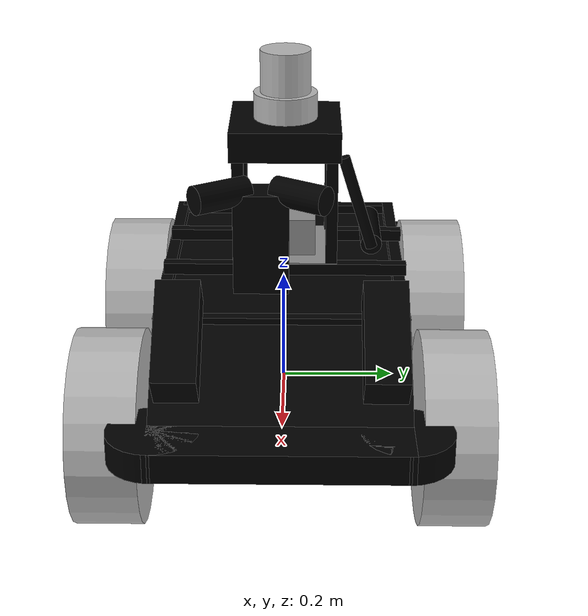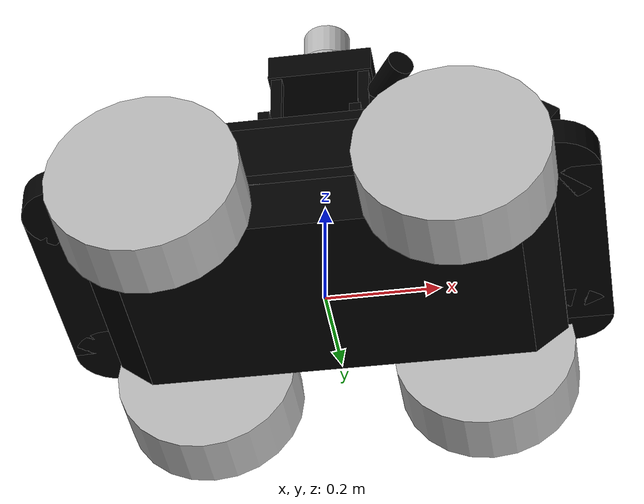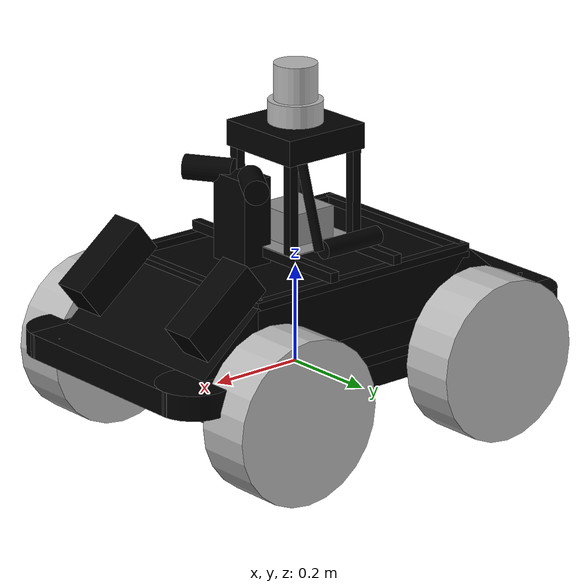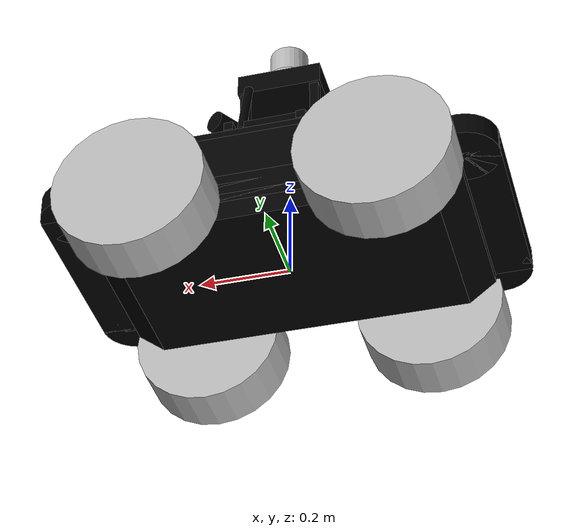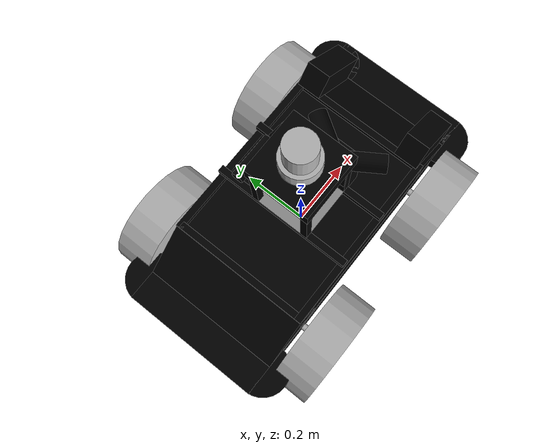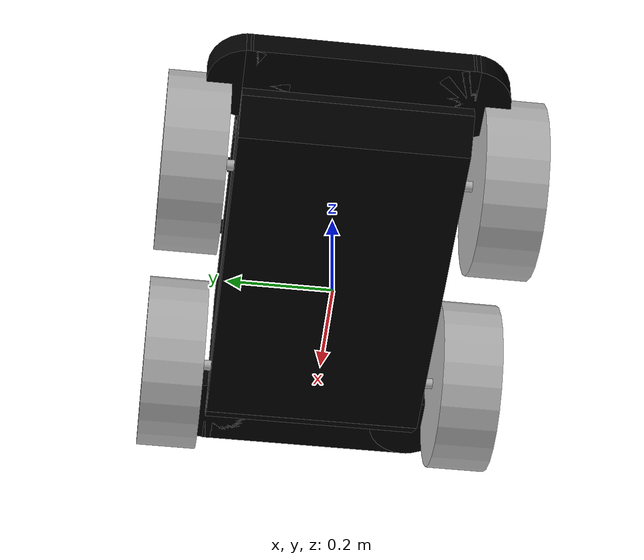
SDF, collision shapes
<?xml version='1.0' encoding='utf-8'?>
<sdf version="1.6">
  <model name="ctu_cras_norlab_husky_sensor_config_3">
    <link name="base_link">
      <inertial>
        <pose>0.007802 0.00085 0.079129 0 -0 0</pose>
        <mass>44.5141</mass>
        <inertia>
          <ixx>0.813788</ixx>
          <ixy>0.000834011</ixy>
          <ixz>-0.0529492</ixz>
          <iyy>2.03197</iyy>
          <iyz>-0.00771766</iyz>
          <izz>2.19559</izz>
        </inertia>
      </inertial>
      <collision name="base_link_collision_bumper_collision">
        <pose>0 0 0.091 0 -0 0</pose>
        <geometry>
          <box>
            <size>0.9874 0.42 0.05</size>
          </box>
        </geometry>
      </collision>
      <collision name="base_link_collision_middle_collision_1">
        <pose>0 0 0.07 0 -0 0</pose>
        <geometry>
          <box>
            <size>0.82 0.42 0.05</size>
          </box>
        </geometry>
      </collision>
      <collision name="base_link_collision_bottom_collision_2">
        <pose>0 0 0.046 0 -0 0</pose>
        <geometry>
          <box>
            <size>0.7 0.42 0.095</size>
          </box>
        </geometry>
      </collision>
      <collision name="base_link_collision_top_collision_3">
        <pose>0 0 0.169 0 -0 0</pose>
        <geometry>
          <box>
            <size>0.54 0.42 0.11</size>
          </box>
        </geometry>
      </collision>
      <collision name="base_link_collision_front_bottom_collision_4">
        <pose>0.3683 0 0.0367 0 -0.66 0</pose>
        <geometry>
          <box>
            <size>0.0759 0.42 0.038</size>
          </box>
        </geometry>
      </collision>
      <collision name="base_link_collision_rear_bottom_collision_5">
        <pose>-0.3683 0 0.0367 0 0.66 0</pose>
        <geometry>
          <box>
            <size>0.0759 0.42 0.038</size>
          </box>
        </geometry>
      </collision>
      <collision name="base_link_collision_front_top_collision_6">
        <pose>0.305 0 0.134 0 0.7 0</pose>
        <geometry>
          <box>
            <size>0.18 0.42 0.1</size>
          </box>
        </geometry>
      </collision>
      <collision name="base_link_collision_rear_top_collision_7">
        <pose>-0.305 0 0.134 0 -0.7 0</pose>
        <geometry>
          <box>
            <size>0.18 0.42 0.1</size>
          </box>
        </geometry>
      </collision>
      <collision name="base_link_collision_front_bumper_left_side_collision_8">
        <pose>0.419 0.2 0.091 0 -0 0</pose>
        <geometry>
          <cylinder>
            <length>0.05</length>
            <radius>0.075</radius>
          </cylinder>
        </geometry>
      </collision>
      <collision name="base_link_collision_front_bumper_right_side_collision_9">
        <pose>0.419 -0.2 0.091 0 -0 0</pose>
        <geometry>
          <cylinder>
            <length>0.05</length>
            <radius>0.075</radius>
          </cylinder>
        </geometry>
      </collision>
      <collision name="base_link_collision_rear_bumper_left_side_collision_10">
        <pose>-0.419 0.2 0.091 0 -0 0</pose>
        <geometry>
          <cylinder>
            <length>0.05</length>
            <radius>0.075</radius>
          </cylinder>
        </geometry>
      </collision>
      <collision name="base_link_collision_rear_bumper_right_side_collision_11">
        <pose>-0.419 -0.2 0.091 0 -0 0</pose>
        <geometry>
          <cylinder>
            <length>0.05</length>
            <radius>0.075</radius>
          </cylinder>
        </geometry>
      </collision>
      <collision name="base_link_fixed_joint_lump__payload_frame_collision_12">
        <pose>0 -0.2 0.23 0 1.5707963267948966 0</pose>
        <geometry>
          <box>
            <size>0.02 0.02 0.54</size>
          </box>
        </geometry>
      </collision>
      <collision name="base_link_fixed_joint_lump__payload_frame_collision_13">
        <pose>0 0.2 0.23 0 1.5707963267948966 0</pose>
        <geometry>
          <box>
            <size>0.02 0.02 0.54</size>
          </box>
        </geometry>
      </collision>
      <collision name="base_link_fixed_joint_lump__payload_frame_collision_14">
        <pose>-0.26 0 0.23 1.5707963267948966 -0 0</pose>
        <geometry>
          <box>
            <size>0.02 0.02 0.4</size>
          </box>
        </geometry>
      </collision>
      <collision name="base_link_fixed_joint_lump__payload_frame_collision_15">
        <pose>0.26 0 0.23 1.5707963267948966 -0 0</pose>
        <geometry>
          <box>
            <size>0.02 0.02 0.4</size>
          </box>
        </geometry>
      </collision>
      <collision name="base_link_fixed_joint_lump__mote_deployer_l_collision_16">
        <pose>0.337827 0.166 0.232059 0 0.66 0</pose>
        <geometry>
          <box>
            <size>0.18 0.072 0.075</size>
          </box>
        </geometry>
      </collision>
      <collision name="base_link_fixed_joint_lump__mote_deployer_r_collision_17">
        <pose>0.337827 -0.164 0.232059 0 0.66 0</pose>
        <geometry>
          <box>
            <size>0.18 0.072 0.075</size>
          </box>
        </geometry>
      </collision>
      <collision name="base_link_fixed_joint_lump__tower_collision_18">
        <pose>-0.078 -0.077 0.36 0 -0 0</pose>
        <geometry>
          <box>
            <size>0.02 0.02 0.2</size>
          </box>
        </geometry>
      </collision>
      <collision name="base_link_fixed_joint_lump__tower_collision_19">
        <pose>0.082 -0.077 0.36 0 -0 0</pose>
        <geometry>
          <box>
            <size>0.02 0.02 0.2</size>
          </box>
        </geometry>
      </collision>
      <collision name="base_link_fixed_joint_lump__tower_collision_20">
        <pose>0.082 0.083 0.36 0 -0 0</pose>
        <geometry>
          <box>
            <size>0.02 0.02 0.2</size>
          </box>
        </geometry>
      </collision>
      <collision name="base_link_fixed_joint_lump__tower_collision_21">
        <pose>-0.078 0.083 0.36 0 -0 0</pose>
        <geometry>
          <box>
            <size>0.02 0.02 0.2</size>
          </box>
        </geometry>
      </collision>
      <collision name="base_link_fixed_joint_lump__tower_collision_22">
        <pose>-0.078 0.003 0.25 1.5707963267948966 -0 0</pose>
        <geometry>
          <box>
            <size>0.02 0.02 0.42</size>
          </box>
        </geometry>
      </collision>
      <collision name="base_link_fixed_joint_lump__tower_collision_23">
        <pose>0.082 0.003 0.25 1.5707963267948966 -0 0</pose>
        <geometry>
          <box>
            <size>0.02 0.02 0.42</size>
          </box>
        </geometry>
      </collision>
      <collision name="base_link_fixed_joint_lump__bullet_collision_24">
        <pose>-0.009 0.153 0.285 0 1.5707963267948966 0</pose>
        <geometry>
          <cylinder>
            <length>0.138</length>
            <radius>0.0185</radius>
          </cylinder>
        </geometry>
      </collision>
      <collision name="base_link_fixed_joint_lump__bullet_antenna_collision_25">
        <pose>0.07 0.127881 0.366204 0.3 -0 0</pose>
        <geometry>
          <cylinder>
            <length>0.17</length>
            <radius>0.01</radius>
          </cylinder>
        </geometry>
      </collision>
      <collision name="base_link_fixed_joint_lump__mobilicom_collision_26">
        <pose>0.1045 -0.037 0.300163 -1e-06 -1.56579 3.1415926535897931</pose>
        <geometry>
          <box>
            <size>0.2 0.095 0.065</size>
          </box>
        </geometry>
      </collision>
      <collision name="base_link_fixed_joint_lump__mobilicom_antenna_l_collision_27">
        <pose>0.131014 -0.104074 0.400297 -1 -1.56579 3.1415926535897931</pose>
        <geometry>
          <cylinder>
            <length>0.1</length>
            <radius>0.025</radius>
          </cylinder>
        </geometry>
      </collision>
      <collision name="base_link_fixed_joint_lump__mobilicom_antenna_r_collision_28">
        <pose>0.131014 0.030074 0.400297 0.999999 -1.56579 3.1415926535897931</pose>
        <geometry>
          <cylinder>
            <length>0.1</length>
            <radius>0.025</radius>
          </cylinder>
        </geometry>
      </collision>
      <collision name="base_link_fixed_joint_lump__tower_cap_collision_29">
        <pose>0.002 0.003 0.471 0 -0 0</pose>
        <geometry>
          <box>
            <size>0.19 0.19 0.052</size>
          </box>
        </geometry>
      </collision>
      <visual name="base_link_visual_visual">
        <geometry>
          <mesh>
            <uri>https://fuel.ignitionrobotics.org/1.0/OpenRobotics/models/CTU_CRAS_NORLAB_HUSKY_SENSOR_CONFIG_1/tip/files/meshes/base_link.dae</uri>
          </mesh>
        </geometry>
      </visual>
      <visual name="base_link_front_bumper_visual_visual_1">
        <pose>0.48 0 0.091 0 -0 0</pose>
        <geometry>
          <mesh>
            <uri>https://fuel.ignitionrobotics.org/1.0/OpenRobotics/models/CTU_CRAS_NORLAB_HUSKY_SENSOR_CONFIG_1/tip/files/meshes/bumper.dae</uri>
          </mesh>
        </geometry>
      </visual>
      <visual name="base_link__rear_bumper_visual_visual_2">
        <pose>-0.48 0 0.091 0 -0 3.1415926535897931</pose>
        <geometry>
          <mesh>
            <uri>https://fuel.ignitionrobotics.org/1.0/OpenRobotics/models/CTU_CRAS_NORLAB_HUSKY_SENSOR_CONFIG_1/tip/files/meshes/bumper.dae</uri>
          </mesh>
        </geometry>
      </visual>
      <visual name="base_link_fixed_joint_lump__top_chassis_link_visual_5_visual_3">
        <geometry>
          <mesh>
            <uri>https://fuel.ignitionrobotics.org/1.0/OpenRobotics/models/CTU_CRAS_NORLAB_HUSKY_SENSOR_CONFIG_1/tip/files/meshes/top_chassis.dae</uri>
          </mesh>
        </geometry>
      </visual>
      <visual name="base_link_fixed_joint_lump__payload_frame_visual_4">
        <pose>0 -0.2 0.23 0 1.5707963267948966 0</pose>
        <geometry>
          <box>
            <size>0.02 0.02 0.54</size>
          </box>
        </geometry>
        <material>
          <ambient>0 0 0 0</ambient>
          <diffuse>0 0 0 1</diffuse>
          <specular>0 0 0 0</specular>
          <emissive>0 0 0 0</emissive>
        </material>
      </visual>
      <visual name="base_link_fixed_joint_lump__payload_frame_visual_5">
        <pose>0 0.2 0.23 0 1.5707963267948966 0</pose>
        <geometry>
          <box>
            <size>0.02 0.02 0.54</size>
          </box>
        </geometry>
        <material>
          <ambient>0 0 0 0</ambient>
          <diffuse>0 0 0 1</diffuse>
          <specular>0 0 0 0</specular>
          <emissive>0 0 0 0</emissive>
        </material>
      </visual>
      <visual name="base_link_fixed_joint_lump__payload_frame_visual_6">
        <pose>-0.26 0 0.23 1.5707963267948966 -0 0</pose>
        <geometry>
          <box>
            <size>0.02 0.02 0.4</size>
          </box>
        </geometry>
        <material>
          <ambient>0 0 0 0</ambient>
          <diffuse>0 0 0 1</diffuse>
          <specular>0 0 0 0</specular>
          <emissive>0 0 0 0</emissive>
        </material>
      </visual>
      <visual name="base_link_fixed_joint_lump__payload_frame_visual_7">
        <pose>0.26 0 0.23 1.5707963267948966 -0 0</pose>
        <geometry>
          <box>
            <size>0.02 0.02 0.4</size>
          </box>
        </geometry>
        <material>
          <ambient>0 0 0 0</ambient>
          <diffuse>0 0 0 1</diffuse>
          <specular>0 0 0 0</specular>
          <emissive>0 0 0 0</emissive>
        </material>
      </visual>
      <visual name="base_link_fixed_joint_lump__mote_deployer_l_visual_8">
        <pose>0.23 0.19 0.195 0 0.33 0</pose>
        <geometry>
          <mesh>
            <uri>https://fuel.ignitionrobotics.org/1.0/OpenRobotics/models/CTU_CRAS_NORLAB_HUSKKY_SENSOR_CONFIG_3/tip/files/meshes/mote_deployer.dae</uri>
          </mesh>
        </geometry>
      </visual>
      <visual name="base_link_fixed_joint_lump__mote_deployer_r_visual_9">
        <pose>0.23 -0.14 0.195 0 0.33 0</pose>
        <geometry>
          <mesh>
            <uri>https://fuel.ignitionrobotics.org/1.0/OpenRobotics/models/CTU_CRAS_NORLAB_HUSKKY_SENSOR_CONFIG_3/tip/files/meshes/mote_deployer.dae</uri>
          </mesh>
        </geometry>
      </visual>
      <visual name="base_link_fixed_joint_lump__tower_visual_10">
        <pose>-0.078 -0.077 0.36 0 -0 0</pose>
        <geometry>
          <box>
            <size>0.02 0.02 0.2</size>
          </box>
        </geometry>
        <material>
          <ambient>0 0 0 0</ambient>
          <diffuse>0.564706 0.564706 0.564706 1</diffuse>
          <specular>0 0 0 0</specular>
          <emissive>0 0 0 0</emissive>
        </material>
      </visual>
      <visual name="base_link_fixed_joint_lump__tower_visual_11">
        <pose>0.082 -0.077 0.36 0 -0 0</pose>
        <geometry>
          <box>
            <size>0.02 0.02 0.2</size>
          </box>
        </geometry>
        <material>
          <ambient>0 0 0 0</ambient>
          <diffuse>0.564706 0.564706 0.564706 1</diffuse>
          <specular>0 0 0 0</specular>
          <emissive>0 0 0 0</emissive>
        </material>
      </visual>
      <visual name="base_link_fixed_joint_lump__tower_visual_12">
        <pose>0.082 0.083 0.36 0 -0 0</pose>
        <geometry>
          <box>
            <size>0.02 0.02 0.2</size>
          </box>
        </geometry>
        <material>
          <ambient>0 0 0 0</ambient>
          <diffuse>0.564706 0.564706 0.564706 1</diffuse>
          <specular>0 0 0 0</specular>
          <emissive>0 0 0 0</emissive>
        </material>
      </visual>
      <visual name="base_link_fixed_joint_lump__tower_visual_13">
        <pose>-0.078 0.083 0.36 0 -0 0</pose>
        <geometry>
          <box>
            <size>0.02 0.02 0.2</size>
          </box>
        </geometry>
        <material>
          <ambient>0 0 0 0</ambient>
          <diffuse>0.564706 0.564706 0.564706 1</diffuse>
          <specular>0 0 0 0</specular>
          <emissive>0 0 0 0</emissive>
        </material>
      </visual>
      <visual name="base_link_fixed_joint_lump__tower_visual_14">
        <pose>-0.078 0.003 0.25 1.5707963267948966 -0 0</pose>
        <geometry>
          <box>
            <size>0.02 0.02 0.42</size>
          </box>
        </geometry>
        <material>
          <ambient>0 0 0 0</ambient>
          <diffuse>0.564706 0.564706 0.564706 1</diffuse>
          <specular>0 0 0 0</specular>
          <emissive>0 0 0 0</emissive>
        </material>
      </visual>
      <visual name="base_link_fixed_joint_lump__tower_visual_15">
        <pose>0.082 0.003 0.25 1.5707963267948966 -0 0</pose>
        <geometry>
          <box>
            <size>0.02 0.02 0.42</size>
          </box>
        </geometry>
        <material>
          <ambient>0 0 0 0</ambient>
          <diffuse>0.564706 0.564706 0.564706 1</diffuse>
          <specular>0 0 0 0</specular>
          <emissive>0 0 0 0</emissive>
        </material>
      </visual>
      <visual name="base_link_fixed_joint_lump__bullet_visual_16">
        <pose>-0.078 0.153 0.285 0 -0 0</pose>
        <geometry>
          <mesh>
            <uri>https://fuel.ignitionrobotics.org/1.0/OpenRobotics/models/CTU_CRAS_NORLAB_HUSKKY_SENSOR_CONFIG_3/tip/files/meshes/bullet.dae</uri>
          </mesh>
        </geometry>
        <material>
          <ambient>0 0 0 0</ambient>
          <diffuse>0.664706 0.664706 0.664706 1</diffuse>
          <specular>0 0 0 0</specular>
          <emissive>0 0 0 0</emissive>
        </material>
      </visual>
      <visual name="base_link_fixed_joint_lump__bullet_antenna_visual_17">
        <pose>0.07 0.127881 0.366204 0.3 -0 0</pose>
        <geometry>
          <cylinder>
            <length>0.17</length>
            <radius>0.01</radius>
          </cylinder>
        </geometry>
        <material>
          <ambient>0 0 0 0</ambient>
          <diffuse>0.664706 0.664706 0.664706 1</diffuse>
          <specular>0 0 0 0</specular>
          <emissive>0 0 0 0</emissive>
        </material>
      </visual>
      <visual name="base_link_fixed_joint_lump__mobilicom_visual_18">
        <pose>0.09175 -0.037 0.350099 -1e-06 -1.56579 3.1415926535897931</pose>
        <geometry>
          <mesh>
            <uri>https://fuel.ignitionrobotics.org/1.0/OpenRobotics/models/CTU_CRAS_NORLAB_HUSKKY_SENSOR_CONFIG_3/tip/files/meshes/mobilicom.dae</uri>
          </mesh>
        </geometry>
      </visual>
      <visual name="base_link_fixed_joint_lump__mobilicom_antenna_l_visual_19">
        <pose>0.131014 -0.104074 0.400297 -1 -1.56579 3.1415926535897931</pose>
        <geometry>
          <cylinder>
            <length>0.1</length>
            <radius>0.005</radius>
          </cylinder>
        </geometry>
      </visual>
      <visual name="base_link_fixed_joint_lump__mobilicom_antenna_r_visual_20">
        <pose>0.131014 0.030074 0.400297 0.999999 -1.56579 3.1415926535897931</pose>
        <geometry>
          <cylinder>
            <length>0.1</length>
            <radius>0.005</radius>
          </cylinder>
        </geometry>
      </visual>
      <visual name="base_link_fixed_joint_lump__tower_cap_visual_21">
        <pose>0.002 0.003 0.462 0 -0 0</pose>
        <geometry>
          <mesh>
            <uri>https://fuel.ignitionrobotics.org/1.0/OpenRobotics/models/CTU_CRAS_NORLAB_HUSKKY_SENSOR_CONFIG_3/tip/files/meshes/tower_cap_v1.dae</uri>
          </mesh>
        </geometry>
      </visual>
      <light name="light_left" type="spot">
        <pose>0 0.215 0.23 1.5707963267948966 1.5707963267948966 0</pose>
        <attenuation>
          <range>50</range>
          <linear>0</linear>
          <constant>0.1</constant>
          <quadratic>0.0025</quadratic>
        </attenuation>
        <diffuse>0.8 0.8 0.5 1</diffuse>
        <specular>0.8 0.8 0.5 1</specular>
        <spot>
          <inner_angle>2.8</inner_angle>
          <outer_angle>2.9</outer_angle>
          <falloff>1</falloff>
        </spot>
        <direction>1 0 0</direction>
      </light>
      <light name="light_right" type="spot">
        <pose>0 -0.215 0.23 -1.5707963267948966 1.5707963267948966 0</pose>
        <attenuation>
          <range>50</range>
          <linear>0</linear>
          <constant>0.1</constant>
          <quadratic>0.0025</quadratic>
        </attenuation>
        <diffuse>0.8 0.8 0.5 1</diffuse>
        <specular>0.8 0.8 0.5 1</specular>
        <spot>
          <inner_angle>2.8</inner_angle>
          <outer_angle>2.9</outer_angle>
          <falloff>1</falloff>
        </spot>
        <direction>1 0 0</direction>
      </light>
      <light name="light_rear" type="spot">
        <pose>-0.275 0 0.23 0 1.5707963267948966 0</pose>
        <attenuation>
          <range>50</range>
          <linear>0</linear>
          <constant>0.1</constant>
          <quadratic>0.0025</quadratic>
        </attenuation>
        <diffuse>0.8 0.8 0.5 1</diffuse>
        <specular>0.8 0.8 0.5 1</specular>
        <spot>
          <inner_angle>1.8</inner_angle>
          <outer_angle>1.9</outer_angle>
          <falloff>1</falloff>
        </spot>
        <direction>1 0 0</direction>
      </light>
      <light name="light_front" type="spot">
        <pose>0.275 0 0.23 3.1415926535897931 1.5707963267948966 0</pose>
        <attenuation>
          <range>50</range>
          <linear>0</linear>
          <constant>0.1</constant>
          <quadratic>0.0025</quadratic>
        </attenuation>
        <diffuse>0.8 0.8 0.5 1</diffuse>
        <specular>0.8 0.8 0.5 1</specular>
        <spot>
          <inner_angle>1.8</inner_angle>
          <outer_angle>1.9</outer_angle>
          <falloff>1</falloff>
        </spot>
        <direction>1 0 0</direction>
      </light>
    </link>
    <link name="front_left_wheel_link">
      <pose>0.256 0.2854 0.03282 0 -0 0</pose>
      <inertial>
        <mass>2.637</mass>
        <inertia>
          <ixx>0.02467</ixx>
          <ixy>0</ixy>
          <ixz>0</ixz>
          <iyy>0.04411</iyy>
          <iyz>0</iyz>
          <izz>0.02467</izz>
        </inertia>
      </inertial>
      <collision name="front_left_wheel_link_collision_collision">
        <pose>0 0 0 1.5707963267948966 -0 0</pose>
        <geometry>
          <cylinder>
            <length>0.1143</length>
            <radius>0.1651</radius>
          </cylinder>
        </geometry>
        <surface>
          <contact>
            <ode>
              <kp>1e+07</kp>
              <kd>1</kd>
            </ode>
          </contact>
          <friction>
            <ode>
              <mu>0.5</mu>
              <mu2>1</mu2>
              <slip1>0.00062</slip1>
              <slip2>0</slip2>
              <fdir1>0 0 1</fdir1>
            </ode>
          </friction>
        </surface>
      </collision>
      <visual name="front_left_wheel_link_visual_visual">
        <geometry>
          <mesh>
            <uri>https://fuel.ignitionrobotics.org/1.0/OpenRobotics/models/CTU_CRAS_NORLAB_HUSKY_SENSOR_CONFIG_1/tip/files/meshes/wheel.dae</uri>
          </mesh>
        </geometry>
      </visual>
    </link>
    <joint name="front_left_wheel_joint" type="revolute">
      <child>front_left_wheel_link</child>
      <parent>base_link</parent>
      <axis>
        <xyz>0 1 0</xyz>
        <limit>
          <lower>-1e+16</lower>
          <upper>1e+16</upper>
          <effort>-1</effort>
          <velocity>-1</velocity>
        </limit>
        <dynamics>
          <damping>0</damping>
          <friction>0</friction>
          <spring_reference>0</spring_reference>
          <spring_stiffness>0</spring_stiffness>
        </dynamics>
        <use_parent_model_frame>0</use_parent_model_frame>
      </axis>
    </joint>
    <link name="front_left_wheel_axle">
      <pose>0.256 0.2854 0.03282 0 -0 0</pose>
      <inertial>
        <mass>1e-05</mass>
        <inertia>
          <ixx>0.001</ixx>
          <ixy>1e-06</ixy>
          <ixz>1e-06</ixz>
          <iyy>0.001</iyy>
          <iyz>1e-06</iyz>
          <izz>0.001</izz>
        </inertia>
      </inertial>
      <collision name="front_left_wheel_axle_collision">
        <pose>0 -0.065 0 1.5707963267948966 -0 0</pose>
        <geometry>
          <cylinder>
            <length>0.03</length>
            <radius>0.01</radius>
          </cylinder>
        </geometry>
      </collision>
      <visual name="front_left_wheel_axle_visual">
        <pose>0 -0.065 0 1.5707963267948966 -0 0</pose>
        <geometry>
          <cylinder>
            <length>0.03</length>
            <radius>0.01</radius>
          </cylinder>
        </geometry>
      </visual>
    </link>
    <joint name="front_left_wheel_axle_j" type="fixed">
      <child>front_left_wheel_axle</child>
      <parent>front_left_wheel_link</parent>
      <axis>
        <dynamics>
          <spring_reference>0</spring_reference>
          <spring_stiffness>0</spring_stiffness>
        </dynamics>
        <xyz>0 0 1</xyz>
        <use_parent_model_frame>0</use_parent_model_frame>
        <limit>
          <lower>-1e+16</lower>
          <upper>1e+16</upper>
        </limit>
      </axis>
      <physics>
        <ode>
          <limit>
            <cfm>0</cfm>
            <erp>0.2</erp>
          </limit>
        </ode>
      </physics>
    </joint>
    <link name="front_right_wheel_link">
      <pose>0.256 -0.2854 0.03282 0 -0 0</pose>
      <inertial>
        <mass>2.637</mass>
        <inertia>
          <ixx>0.02467</ixx>
          <ixy>0</ixy>
          <ixz>0</ixz>
          <iyy>0.04411</iyy>
          <iyz>0</iyz>
          <izz>0.02467</izz>
        </inertia>
      </inertial>
      <collision name="front_right_wheel_link_collision_collision">
        <pose>0 0 0 1.5707963267948966 -0 0</pose>
        <geometry>
          <cylinder>
            <length>0.1143</length>
            <radius>0.1651</radius>
          </cylinder>
        </geometry>
        <surface>
          <contact>
            <ode>
              <kp>1e+07</kp>
              <kd>1</kd>
            </ode>
          </contact>
          <friction>
            <ode>
              <mu>0.5</mu>
              <mu2>1</mu2>
              <slip1>0.00062</slip1>
              <slip2>0</slip2>
              <fdir1>0 0 1</fdir1>
            </ode>
          </friction>
        </surface>
      </collision>
      <visual name="front_right_wheel_link_visual_visual">
        <geometry>
          <mesh>
            <uri>https://fuel.ignitionrobotics.org/1.0/OpenRobotics/models/CTU_CRAS_NORLAB_HUSKY_SENSOR_CONFIG_1/tip/files/meshes/wheel.dae</uri>
          </mesh>
        </geometry>
      </visual>
    </link>
    <joint name="front_right_wheel_joint" type="revolute">
      <child>front_right_wheel_link</child>
      <parent>base_link</parent>
      <axis>
        <xyz>0 1 0</xyz>
        <limit>
          <lower>-1e+16</lower>
          <upper>1e+16</upper>
          <effort>-1</effort>
          <velocity>-1</velocity>
        </limit>
        <dynamics>
          <damping>0</damping>
          <friction>0</friction>
          <spring_reference>0</spring_reference>
          <spring_stiffness>0</spring_stiffness>
        </dynamics>
        <use_parent_model_frame>0</use_parent_model_frame>
      </axis>
    </joint>
    <link name="front_right_wheel_axle">
      <pose>0.256 -0.2854 0.03282 0 -0 0</pose>
      <inertial>
        <mass>1e-05</mass>
        <inertia>
          <ixx>0.001</ixx>
          <ixy>1e-06</ixy>
          <ixz>1e-06</ixz>
          <iyy>0.001</iyy>
          <iyz>1e-06</iyz>
          <izz>0.001</izz>
        </inertia>
      </inertial>
      <collision name="front_right_wheel_axle_collision">
        <pose>0 0.065 0 1.5707963267948966 -0 0</pose>
        <geometry>
          <cylinder>
            <length>0.03</length>
            <radius>0.01</radius>
          </cylinder>
        </geometry>
      </collision>
      <visual name="front_right_wheel_axle_visual">
        <pose>0 0.065 0 1.5707963267948966 -0 0</pose>
        <geometry>
          <cylinder>
            <length>0.03</length>
            <radius>0.01</radius>
          </cylinder>
        </geometry>
      </visual>
    </link>
    <joint name="front_right_wheel_axle_j" type="fixed">
      <child>front_right_wheel_axle</child>
      <parent>front_right_wheel_link</parent>
      <axis>
        <dynamics>
          <spring_reference>0</spring_reference>
          <spring_stiffness>0</spring_stiffness>
        </dynamics>
        <xyz>0 0 1</xyz>
        <use_parent_model_frame>0</use_parent_model_frame>
        <limit>
          <lower>-1e+16</lower>
          <upper>1e+16</upper>
        </limit>
      </axis>
      <physics>
        <ode>
          <limit>
            <cfm>0</cfm>
            <erp>0.2</erp>
          </limit>
        </ode>
      </physics>
    </joint>
    <link name="rear_left_wheel_link">
      <pose>-0.256 0.2854 0.03282 0 -0 0</pose>
      <inertial>
        <mass>2.637</mass>
        <inertia>
          <ixx>0.02467</ixx>
          <ixy>0</ixy>
          <ixz>0</ixz>
          <iyy>0.04411</iyy>
          <iyz>0</iyz>
          <izz>0.02467</izz>
        </inertia>
      </inertial>
      <collision name="rear_left_wheel_link_collision_collision">
        <pose>0 0 0 1.5707963267948966 -0 0</pose>
        <geometry>
          <cylinder>
            <length>0.1143</length>
            <radius>0.1651</radius>
          </cylinder>
        </geometry>
        <surface>
          <contact>
            <ode>
              <kp>1e+07</kp>
              <kd>1</kd>
            </ode>
          </contact>
          <friction>
            <ode>
              <mu>0.5</mu>
              <mu2>1</mu2>
              <slip1>0.00062</slip1>
              <slip2>0</slip2>
              <fdir1>0 0 1</fdir1>
            </ode>
          </friction>
        </surface>
      </collision>
      <visual name="rear_left_wheel_link_visual_visual">
        <geometry>
          <mesh>
            <uri>https://fuel.ignitionrobotics.org/1.0/OpenRobotics/models/CTU_CRAS_NORLAB_HUSKY_SENSOR_CONFIG_1/tip/files/meshes/wheel.dae</uri>
          </mesh>
        </geometry>
      </visual>
    </link>
    <joint name="rear_left_wheel_joint" type="revolute">
      <child>rear_left_wheel_link</child>
      <parent>base_link</parent>
      <axis>
        <xyz>0 1 0</xyz>
        <limit>
          <lower>-1e+16</lower>
          <upper>1e+16</upper>
          <effort>-1</effort>
          <velocity>-1</velocity>
        </limit>
        <dynamics>
          <damping>0</damping>
          <friction>0</friction>
          <spring_reference>0</spring_reference>
          <spring_stiffness>0</spring_stiffness>
        </dynamics>
        <use_parent_model_frame>0</use_parent_model_frame>
      </axis>
    </joint>
    <link name="rear_left_wheel_axle">
      <pose>-0.256 0.2854 0.03282 0 -0 0</pose>
      <inertial>
        <mass>1e-05</mass>
        <inertia>
          <ixx>0.001</ixx>
          <ixy>1e-06</ixy>
          <ixz>1e-06</ixz>
          <iyy>0.001</iyy>
          <iyz>1e-06</iyz>
          <izz>0.001</izz>
        </inertia>
      </inertial>
      <collision name="rear_left_wheel_axle_collision">
        <pose>0 -0.065 0 1.5707963267948966 -0 0</pose>
        <geometry>
          <cylinder>
            <length>0.03</length>
            <radius>0.01</radius>
          </cylinder>
        </geometry>
      </collision>
      <visual name="rear_left_wheel_axle_visual">
        <pose>0 -0.065 0 1.5707963267948966 -0 0</pose>
        <geometry>
          <cylinder>
            <length>0.03</length>
            <radius>0.01</radius>
          </cylinder>
        </geometry>
      </visual>
    </link>
    <joint name="rear_left_wheel_axle_j" type="fixed">
      <child>rear_left_wheel_axle</child>
      <parent>rear_left_wheel_link</parent>
      <axis>
        <dynamics>
          <spring_reference>0</spring_reference>
          <spring_stiffness>0</spring_stiffness>
        </dynamics>
        <xyz>0 0 1</xyz>
        <use_parent_model_frame>0</use_parent_model_frame>
        <limit>
          <lower>-1e+16</lower>
          <upper>1e+16</upper>
        </limit>
      </axis>
      <physics>
        <ode>
          <limit>
            <cfm>0</cfm>
            <erp>0.2</erp>
          </limit>
        </ode>
      </physics>
    </joint>
    <link name="tower_camera_floor">
      <pose>0.002 0.003 0.46 0 -0 0</pose>
      <inertial>
        <mass>1e-05</mass>
        <inertia>
          <ixx>0.001</ixx>
          <ixy>1e-06</ixy>
          <ixz>1e-06</ixz>
          <iyy>0.001</iyy>
          <iyz>1e-06</iyz>
          <izz>0.001</izz>
        </inertia>
      </inertial>
      <collision name="tower_camera_floor_collision">
        <pose>0 0 -0.001 0 -0 0</pose>
        <geometry>
          <box>
            <size>0.18 0.18 0.002</size>
          </box>
        </geometry>
      </collision>
      <visual name="tower_camera_floor_visual">
        <pose>0 0 -0.001 0 -0 0</pose>
        <geometry>
          <box>
            <size>0.18 0.18 0.002</size>
          </box>
        </geometry>
        <material>
          <ambient>0 0 0 0</ambient>
          <diffuse>0.564706 0.564706 0.564706 1</diffuse>
          <specular>0 0 0 0</specular>
          <emissive>0 0 0 0</emissive>
        </material>
      </visual>
    </link>
    <joint name="tower_camera_floor_j" type="fixed">
      <child>tower_camera_floor</child>
      <parent>base_link</parent>
      <axis>
        <dynamics>
          <spring_reference>0</spring_reference>
          <spring_stiffness>0</spring_stiffness>
        </dynamics>
        <xyz>0 0 1</xyz>
        <use_parent_model_frame>0</use_parent_model_frame>
        <limit>
          <lower>-1e+16</lower>
          <upper>1e+16</upper>
        </limit>
      </axis>
      <physics>
        <ode>
          <limit>
            <cfm>0</cfm>
            <erp>0.2</erp>
          </limit>
        </ode>
      </physics>
    </joint>
    <link name="camera_0">
      <pose>0.012 0.051 0.462 0 -0 0</pose>
      <inertial>
        <pose>0.039802 0 0.0145 0 -0 0</pose>
        <mass>0.232</mass>
        <inertia>
          <ixx>3.25187e-05</ixx>
          <ixy>0</ixy>
          <ixz>0</ixz>
          <iyy>0.000158598</iyy>
          <iyz>0</iyz>
          <izz>0.000158598</izz>
        </inertia>
      </inertial>
      <collision name="camera_0_collision_collision">
        <pose>0.02465 0 0.0145 0 -0 0</pose>
        <geometry>
          <box>
            <size>0.0555 0.029 0.029</size>
          </box>
        </geometry>
      </collision>
      <collision name="camera_0_lens_collision_collision_1">
        <pose>0.062834 0 0.0145 0 1.5707963267948966 0</pose>
        <geometry>
          <cylinder>
            <length>0.03974</length>
            <radius>0.0125</radius>
          </cylinder>
        </geometry>
      </collision>
      <visual name="camera_0_visual">
        <pose>0 0 0.0145 0 -0 0</pose>
        <geometry>
          <mesh>
            <uri>https://fuel.ignitionrobotics.org/1.0/OpenRobotics/models/CTU_CRAS_NORLAB_HUSKKY_SENSOR_CONFIG_3/tip/files/meshes/basler_ace2_pro.dae</uri>
          </mesh>
        </geometry>
      </visual>
      <visual name="camera_0_visual_1">
        <pose>0.042964 0 0.0145 0 -0 0</pose>
        <geometry>
          <mesh>
            <uri>https://fuel.ignitionrobotics.org/1.0/OpenRobotics/models/CTU_CRAS_NORLAB_HUSKKY_SENSOR_CONFIG_3/tip/files/meshes/evetar_lens.dae</uri>
          </mesh>
        </geometry>
      </visual>
      <sensor name="camera_0" type="camera">
        <pose>0.072044 0 0.0145 0 -0 0</pose>
        <update_rate>9</update_rate>
        <visualize>0</visualize>
        <camera>
          <horizontal_fov>1.50971</horizontal_fov>
          <image>
            <width>1920</width>
            <height>1200</height>
            <format>R8G8B8</format>
          </image>
          <clip>
            <near>0.011726</near>
            <far>300</far>
          </clip>
          <noise>
            <type>gaussian</type>
            <mean>0</mean>
            <stddev>0.007</stddev>
          </noise>
          <lens>
            <intrinsics>
              <fx>1020.51</fx>
              <fy>1020.51</fy>
              <cx>959.5</cx>
              <cy>599.5</cy>
              <s>0</s>
            </intrinsics>
            <type>stereographic</type>
            <scale_to_hfov>1</scale_to_hfov>
          </lens>
        </camera>
      </sensor>
    </link>
    <joint name="camera_0_j" type="fixed">
      <child>camera_0</child>
      <parent>tower_camera_floor</parent>
      <axis>
        <dynamics>
          <spring_reference>0</spring_reference>
          <spring_stiffness>0</spring_stiffness>
        </dynamics>
        <xyz>0 0 1</xyz>
        <use_parent_model_frame>0</use_parent_model_frame>
        <limit>
          <lower>-1e+16</lower>
          <upper>1e+16</upper>
        </limit>
      </axis>
      <physics>
        <ode>
          <limit>
            <cfm>0</cfm>
            <erp>0.2</erp>
          </limit>
        </ode>
      </physics>
    </joint>
    <link name="camera_1">
      <pose>0.05 -0.007 0.462 0 0 -1.5707963267948966</pose>
      <inertial>
        <pose>0.039802 0 0.0145 0 -0 0</pose>
        <mass>0.232</mass>
        <inertia>
          <ixx>3.25187e-05</ixx>
          <ixy>0</ixy>
          <ixz>0</ixz>
          <iyy>0.000158598</iyy>
          <iyz>0</iyz>
          <izz>0.000158598</izz>
        </inertia>
      </inertial>
      <collision name="camera_1_collision_collision">
        <pose>0.02465 0 0.0145 0 -0 0</pose>
        <geometry>
          <box>
            <size>0.0555 0.029 0.029</size>
          </box>
        </geometry>
      </collision>
      <collision name="camera_1_lens_collision_collision_1">
        <pose>0.062834 0 0.0145 0 1.5707963267948966 0</pose>
        <geometry>
          <cylinder>
            <length>0.03974</length>
            <radius>0.0125</radius>
          </cylinder>
        </geometry>
      </collision>
      <visual name="camera_1_visual">
        <pose>0 0 0.0145 0 -0 0</pose>
        <geometry>
          <mesh>
            <uri>https://fuel.ignitionrobotics.org/1.0/OpenRobotics/models/CTU_CRAS_NORLAB_HUSKKY_SENSOR_CONFIG_3/tip/files/meshes/basler_ace2_pro.dae</uri>
          </mesh>
        </geometry>
      </visual>
      <visual name="camera_1_visual_1">
        <pose>0.042964 0 0.0145 0 -0 0</pose>
        <geometry>
          <mesh>
            <uri>https://fuel.ignitionrobotics.org/1.0/OpenRobotics/models/CTU_CRAS_NORLAB_HUSKKY_SENSOR_CONFIG_3/tip/files/meshes/evetar_lens.dae</uri>
          </mesh>
        </geometry>
      </visual>
      <sensor name="camera_1" type="camera">
        <pose>0.072044 0 0.0145 0 -0 0</pose>
        <update_rate>9</update_rate>
        <visualize>0</visualize>
        <camera>
          <horizontal_fov>1.50971</horizontal_fov>
          <image>
            <width>1920</width>
            <height>1200</height>
            <format>R8G8B8</format>
          </image>
          <clip>
            <near>0.011726</near>
            <far>300</far>
          </clip>
          <noise>
            <type>gaussian</type>
            <mean>0</mean>
            <stddev>0.007</stddev>
          </noise>
          <lens>
            <intrinsics>
              <fx>1020.51</fx>
              <fy>1020.51</fy>
              <cx>959.5</cx>
              <cy>599.5</cy>
              <s>0</s>
            </intrinsics>
            <type>stereographic</type>
            <scale_to_hfov>1</scale_to_hfov>
          </lens>
        </camera>
      </sensor>
    </link>
    <joint name="camera_1_j" type="fixed">
      <child>camera_1</child>
      <parent>tower_camera_floor</parent>
      <axis>
        <dynamics>
          <spring_reference>0</spring_reference>
          <spring_stiffness>0</spring_stiffness>
        </dynamics>
        <xyz>0 0 1</xyz>
        <use_parent_model_frame>0</use_parent_model_frame>
        <limit>
          <lower>-1e+16</lower>
          <upper>1e+16</upper>
        </limit>
      </axis>
      <physics>
        <ode>
          <limit>
            <cfm>0</cfm>
            <erp>0.2</erp>
          </limit>
        </ode>
      </physics>
    </joint>
    <link name="camera_2">
      <pose>-0.008 -0.045 0.462 0 0 -3.1415926535897931</pose>
      <inertial>
        <pose>0.039802 0 0.0145 0 -0 0</pose>
        <mass>0.232</mass>
        <inertia>
          <ixx>3.25187e-05</ixx>
          <ixy>0</ixy>
          <ixz>0</ixz>
          <iyy>0.000158598</iyy>
          <iyz>0</iyz>
          <izz>0.000158598</izz>
        </inertia>
      </inertial>
      <collision name="camera_2_collision_collision">
        <pose>0.02465 0 0.0145 0 -0 0</pose>
        <geometry>
          <box>
            <size>0.0555 0.029 0.029</size>
          </box>
        </geometry>
      </collision>
      <collision name="camera_2_lens_collision_collision_1">
        <pose>0.062834 0 0.0145 0 1.5707963267948966 0</pose>
        <geometry>
          <cylinder>
            <length>0.03974</length>
            <radius>0.0125</radius>
          </cylinder>
        </geometry>
      </collision>
      <visual name="camera_2_visual">
        <pose>0 0 0.0145 0 -0 0</pose>
        <geometry>
          <mesh>
            <uri>https://fuel.ignitionrobotics.org/1.0/OpenRobotics/models/CTU_CRAS_NORLAB_HUSKKY_SENSOR_CONFIG_3/tip/files/meshes/basler_ace2_pro.dae</uri>
          </mesh>
        </geometry>
      </visual>
      <visual name="camera_2_visual_1">
        <pose>0.042964 0 0.0145 0 -0 0</pose>
        <geometry>
          <mesh>
            <uri>https://fuel.ignitionrobotics.org/1.0/OpenRobotics/models/CTU_CRAS_NORLAB_HUSKKY_SENSOR_CONFIG_3/tip/files/meshes/evetar_lens.dae</uri>
          </mesh>
        </geometry>
      </visual>
      <sensor name="camera_2" type="camera">
        <pose>0.072044 0 0.0145 0 -0 0</pose>
        <update_rate>9</update_rate>
        <visualize>0</visualize>
        <camera>
          <horizontal_fov>1.50971</horizontal_fov>
          <image>
            <width>1920</width>
            <height>1200</height>
            <format>R8G8B8</format>
          </image>
          <clip>
            <near>0.011726</near>
            <far>300</far>
          </clip>
          <noise>
            <type>gaussian</type>
            <mean>0</mean>
            <stddev>0.007</stddev>
          </noise>
          <lens>
            <intrinsics>
              <fx>1020.51</fx>
              <fy>1020.51</fy>
              <cx>959.5</cx>
              <cy>599.5</cy>
              <s>0</s>
            </intrinsics>
            <type>stereographic</type>
            <scale_to_hfov>1</scale_to_hfov>
          </lens>
        </camera>
      </sensor>
    </link>
    <joint name="camera_2_j" type="fixed">
      <child>camera_2</child>
      <parent>tower_camera_floor</parent>
      <axis>
        <dynamics>
          <spring_reference>0</spring_reference>
          <spring_stiffness>0</spring_stiffness>
        </dynamics>
        <xyz>0 0 1</xyz>
        <use_parent_model_frame>0</use_parent_model_frame>
        <limit>
          <lower>-1e+16</lower>
          <upper>1e+16</upper>
        </limit>
      </axis>
      <physics>
        <ode>
          <limit>
            <cfm>0</cfm>
            <erp>0.2</erp>
          </limit>
        </ode>
      </physics>
    </joint>
    <link name="camera_3">
      <pose>-0.046 0.013 0.462 0 -0 1.5707963267948966</pose>
      <inertial>
        <pose>0.039802 0 0.0145 0 -0 0</pose>
        <mass>0.232</mass>
        <inertia>
          <ixx>3.25187e-05</ixx>
          <ixy>0</ixy>
          <ixz>0</ixz>
          <iyy>0.000158598</iyy>
          <iyz>0</iyz>
          <izz>0.000158598</izz>
        </inertia>
      </inertial>
      <collision name="camera_3_collision_collision">
        <pose>0.02465 0 0.0145 0 -0 0</pose>
        <geometry>
          <box>
            <size>0.0555 0.029 0.029</size>
          </box>
        </geometry>
      </collision>
      <collision name="camera_3_lens_collision_collision_1">
        <pose>0.062834 0 0.0145 0 1.5707963267948966 0</pose>
        <geometry>
          <cylinder>
            <length>0.03974</length>
            <radius>0.0125</radius>
          </cylinder>
        </geometry>
      </collision>
      <visual name="camera_3_visual">
        <pose>0 0 0.0145 0 -0 0</pose>
        <geometry>
          <mesh>
            <uri>https://fuel.ignitionrobotics.org/1.0/OpenRobotics/models/CTU_CRAS_NORLAB_HUSKKY_SENSOR_CONFIG_3/tip/files/meshes/basler_ace2_pro.dae</uri>
          </mesh>
        </geometry>
      </visual>
      <visual name="camera_3_visual_1">
        <pose>0.042964 0 0.0145 0 -0 0</pose>
        <geometry>
          <mesh>
            <uri>https://fuel.ignitionrobotics.org/1.0/OpenRobotics/models/CTU_CRAS_NORLAB_HUSKKY_SENSOR_CONFIG_3/tip/files/meshes/evetar_lens.dae</uri>
          </mesh>
        </geometry>
      </visual>
      <sensor name="camera_3" type="camera">
        <pose>0.072044 0 0.0145 0 -0 0</pose>
        <update_rate>9</update_rate>
        <visualize>0</visualize>
        <camera>
          <horizontal_fov>1.50971</horizontal_fov>
          <image>
            <width>1920</width>
            <height>1200</height>
            <format>R8G8B8</format>
          </image>
          <clip>
            <near>0.011726</near>
            <far>300</far>
          </clip>
          <noise>
            <type>gaussian</type>
            <mean>0</mean>
            <stddev>0.007</stddev>
          </noise>
          <lens>
            <intrinsics>
              <fx>1020.51</fx>
              <fy>1020.51</fy>
              <cx>959.5</cx>
              <cy>599.5</cy>
              <s>0</s>
            </intrinsics>
            <type>stereographic</type>
            <scale_to_hfov>1</scale_to_hfov>
          </lens>
        </camera>
      </sensor>
    </link>
    <joint name="camera_3_j" type="fixed">
      <child>camera_3</child>
      <parent>tower_camera_floor</parent>
      <axis>
        <dynamics>
          <spring_reference>0</spring_reference>
          <spring_stiffness>0</spring_stiffness>
        </dynamics>
        <xyz>0 0 1</xyz>
        <use_parent_model_frame>0</use_parent_model_frame>
        <limit>
          <lower>-1e+16</lower>
          <upper>1e+16</upper>
        </limit>
      </axis>
      <physics>
        <ode>
          <limit>
            <cfm>0</cfm>
            <erp>0.2</erp>
          </limit>
        </ode>
      </physics>
    </joint>
    <link name="tower_cap_top">
      <pose>0.002 0.003 0.497 0 -0 0</pose>
      <inertial>
        <mass>2e-05</mass>
        <inertia>
          <ixx>0.002</ixx>
          <ixy>2e-06</ixy>
          <ixz>2e-06</ixz>
          <iyy>0.002</iyy>
          <iyz>2e-06</iyz>
          <izz>0.002</izz>
        </inertia>
      </inertial>
      <collision name="tower_cap_top_fixed_joint_lump__ouster_mount_collision">
        <pose>0 0 0.0225 0 -0 0</pose>
        <geometry>
          <cylinder>
            <length>0.045</length>
            <radius>0.055</radius>
          </cylinder>
        </geometry>
      </collision>
      <visual name="tower_cap_top_fixed_joint_lump__ouster_mount_visual">
        <geometry>
          <mesh>
            <uri>https://fuel.ignitionrobotics.org/1.0/OpenRobotics/models/CTU_CRAS_NORLAB_HUSKKY_SENSOR_CONFIG_3/tip/files/meshes/ouster_mount_v1.dae</uri>
          </mesh>
        </geometry>
      </visual>
    </link>
    <joint name="tower_cap_top_j" type="fixed">
      <child>tower_cap_top</child>
      <parent>base_link</parent>
      <axis>
        <dynamics>
          <spring_reference>0</spring_reference>
          <spring_stiffness>0</spring_stiffness>
        </dynamics>
        <xyz>0 0 1</xyz>
        <use_parent_model_frame>0</use_parent_model_frame>
        <limit>
          <lower>-1e+16</lower>
          <upper>1e+16</upper>
        </limit>
      </axis>
      <physics>
        <ode>
          <limit>
            <cfm>0</cfm>
            <erp>0.2</erp>
          </limit>
        </ode>
      </physics>
    </joint>
    <link name="ouster_mount_top">
      <pose>0.002 0.003 0.542 0 -0 0</pose>
      <inertial>
        <mass>1e-05</mass>
        <inertia>
          <ixx>0.001</ixx>
          <ixy>1e-06</ixy>
          <ixz>1e-06</ixz>
          <iyy>0.001</iyy>
          <iyz>1e-06</iyz>
          <izz>0.001</izz>
        </inertia>
      </inertial>
    </link>
    <joint name="ouster_mount_top_j" type="fixed">
      <child>ouster_mount_top</child>
      <parent>tower_cap_top</parent>
      <axis>
        <dynamics>
          <spring_reference>0</spring_reference>
          <spring_stiffness>0</spring_stiffness>
        </dynamics>
        <xyz>0 0 1</xyz>
        <use_parent_model_frame>0</use_parent_model_frame>
        <limit>
          <lower>-1e+16</lower>
          <upper>1e+16</upper>
        </limit>
      </axis>
      <physics>
        <ode>
          <limit>
            <cfm>0</cfm>
            <erp>0.2</erp>
          </limit>
        </ode>
      </physics>
    </joint>
    <link name="laser">
      <pose>0.002 0.003 0.542 0 -0 0.785398</pose>
      <inertial>
        <pose>0 0 0.03675 0 -0 0</pose>
        <mass>0.5</mass>
        <inertia>
          <ixx>0.000461625</ixx>
          <ixy>0</ixy>
          <ixz>0</ixz>
          <iyy>0.000461625</iyy>
          <iyz>0</iyz>
          <izz>0.000473063</izz>
        </inertia>
      </inertial>
      <collision name="laser_collision">
        <pose>0 0 0.03675 0 -0 0</pose>
        <geometry>
          <cylinder>
            <length>0.0735</length>
            <radius>0.0435</radius>
          </cylinder>
        </geometry>
      </collision>
      <visual name="laser_visual">
        <geometry>
          <mesh>
            <uri>https://fuel.ignitionrobotics.org/1.0/OpenRobotics/models/CTU_CRAS_NORLAB_HUSKKY_SENSOR_CONFIG_3/tip/files/meshes/ouster-os0.dae</uri>
          </mesh>
        </geometry>
      </visual>
      <sensor name="laser" type="gpu_lidar">
        <pose>0 0 0.035925 0 -0 0</pose>
        <update_rate>10</update_rate>
        <visualize>0</visualize>
        <always_on>1</always_on>
        <lidar>
          <scan>
            <horizontal>
              <samples>1024</samples>
              <resolution>1</resolution>
              <min_angle>-3.1459</min_angle>
              <max_angle>3.1459</max_angle>
            </horizontal>
            <vertical>
              <samples>128</samples>
              <resolution>1</resolution>
              <min_angle>-0.785398</min_angle>
              <max_angle>0.785398</max_angle>
            </vertical>
          </scan>
          <range>
            <min>0.25</min>
            <max>50</max>
            <resolution>0.01</resolution>
          </range>
          <noise>
            <type>gaussian</type>
            <mean>0</mean>
            <stddev>0.01</stddev>
          </noise>
        </lidar>
      </sensor>
    </link>
    <joint name="laser_j" type="fixed">
      <child>laser</child>
      <parent>ouster_mount_top</parent>
      <axis>
        <dynamics>
          <spring_reference>0</spring_reference>
          <spring_stiffness>0</spring_stiffness>
        </dynamics>
        <xyz>0 0 1</xyz>
        <use_parent_model_frame>0</use_parent_model_frame>
        <limit>
          <lower>-1e+16</lower>
          <upper>1e+16</upper>
        </limit>
      </axis>
      <physics>
        <ode>
          <limit>
            <cfm>0</cfm>
            <erp>0.2</erp>
          </limit>
        </ode>
      </physics>
    </joint>
    <link name="tower_lower_floor">
      <pose>0.002 0.003 0.262 0 -0 0</pose>
      <inertial>
        <pose>0 0 0.0325 0 -0 0</pose>
        <mass>1.70001</mass>
        <inertia>
          <ixx>0.00316043</ixx>
          <ixy>1e-06</ixy>
          <ixz>1e-06</ixz>
          <iyy>0.00316043</iyy>
          <iyz>1e-06</iyz>
          <izz>0.00412375</izz>
        </inertia>
      </inertial>
      <collision name="tower_lower_floor_collision">
        <pose>0 0 -0.001 0 -0 0</pose>
        <geometry>
          <box>
            <size>0.18 0.18 0.002</size>
          </box>
        </geometry>
      </collision>
      <collision name="tower_lower_floor_fixed_joint_lump__jetson_collision_1">
        <pose>0 0 0.0325 0 -0 0</pose>
        <geometry>
          <box>
            <size>0.105 0.105 0.065</size>
          </box>
        </geometry>
      </collision>
      <visual name="tower_lower_floor_visual">
        <pose>0 0 -0.001 0 -0 0</pose>
        <geometry>
          <box>
            <size>0.18 0.18 0.002</size>
          </box>
        </geometry>
        <material>
          <ambient>0 0 0 0</ambient>
          <diffuse>0.564706 0.564706 0.564706 1</diffuse>
          <specular>0 0 0 0</specular>
          <emissive>0 0 0 0</emissive>
        </material>
      </visual>
      <visual name="tower_lower_floor_fixed_joint_lump__jetson_visual_1">
        <pose>0 0 0.0325 0 -0 0</pose>
        <geometry>
          <box>
            <size>0.105 0.105 0.065</size>
          </box>
        </geometry>
        <material>
          <ambient>0 0 0 0</ambient>
          <diffuse>0 0 0 1</diffuse>
          <specular>0 0 0 0</specular>
          <emissive>0 0 0 0</emissive>
        </material>
      </visual>
    </link>
    <joint name="tower_lower_floor_j" type="fixed">
      <child>tower_lower_floor</child>
      <parent>base_link</parent>
      <axis>
        <dynamics>
          <spring_reference>0</spring_reference>
          <spring_stiffness>0</spring_stiffness>
        </dynamics>
        <xyz>0 0 1</xyz>
        <use_parent_model_frame>0</use_parent_model_frame>
        <limit>
          <lower>-1e+16</lower>
          <upper>1e+16</upper>
        </limit>
      </axis>
      <physics>
        <ode>
          <limit>
            <cfm>0</cfm>
            <erp>0.2</erp>
          </limit>
        </ode>
      </physics>
    </joint>
    <link name="imu">
      <pose>0.002 0.003 0.262 -3.1415926535897931 0 0</pose>
      <inertial>
        <pose>0 0 0.0118 0 -0 0</pose>
        <mass>0.055</mass>
        <inertia>
          <ixx>1.05993e-05</ixx>
          <ixy>0</ixy>
          <ixz>0</ixz>
          <iyy>1.7444e-05</iyy>
          <iyz>0</iyz>
          <izz>2.29378e-05</izz>
        </inertia>
      </inertial>
      <collision name="imu_collision">
        <pose>0 0 0.0118 0 -0 0</pose>
        <geometry>
          <box>
            <size>0.057 0.0419 0.0236</size>
          </box>
        </geometry>
      </collision>
      <visual name="imu_visual">
        <geometry>
          <mesh>
            <uri>https://fuel.ignitionrobotics.org/1.0/OpenRobotics/models/CTU_CRAS_NORLAB_HUSKKY_SENSOR_CONFIG_3/tip/files/meshes/mti-30.dae</uri>
          </mesh>
        </geometry>
      </visual>
      <sensor name="imu" type="imu">
        <always_on>1</always_on>
        <update_rate>50</update_rate>
        <imu>
          <angular_velocity>
            <x>
              <noise type="gaussian">
                <mean>0</mean>
                <stddev>0.009</stddev>
                <bias_mean>0.00075</bias_mean>
                <bias_stddev>0.005</bias_stddev>
                <dynamic_bias_stddev>2e-05</dynamic_bias_stddev>
                <dynamic_bias_correlation_time>400</dynamic_bias_correlation_time>
                <precision>0.00025</precision>
              </noise>
            </x>
            <y>
              <noise type="gaussian">
                <mean>0</mean>
                <stddev>0.009</stddev>
                <bias_mean>0.00075</bias_mean>
                <bias_stddev>0.005</bias_stddev>
                <dynamic_bias_stddev>2e-05</dynamic_bias_stddev>
                <dynamic_bias_correlation_time>400</dynamic_bias_correlation_time>
                <precision>0.00025</precision>
              </noise>
            </y>
            <z>
              <noise type="gaussian">
                <mean>0</mean>
                <stddev>0.009</stddev>
                <bias_mean>0.00075</bias_mean>
                <bias_stddev>0.005</bias_stddev>
                <dynamic_bias_stddev>2e-05</dynamic_bias_stddev>
                <dynamic_bias_correlation_time>400</dynamic_bias_correlation_time>
                <precision>0.00025</precision>
              </noise>
            </z>
          </angular_velocity>
          <linear_acceleration>
            <x>
              <noise type="gaussian">
                <mean>0</mean>
                <stddev>0.021</stddev>
                <bias_mean>0.05</bias_mean>
                <bias_stddev>0.0075</bias_stddev>
                <dynamic_bias_stddev>0.000375</dynamic_bias_stddev>
                <dynamic_bias_correlation_time>175</dynamic_bias_correlation_time>
                <precision>0.005</precision>
              </noise>
            </x>
            <y>
              <noise type="gaussian">
                <mean>0</mean>
                <stddev>0.021</stddev>
                <bias_mean>0.05</bias_mean>
                <bias_stddev>0.0075</bias_stddev>
                <dynamic_bias_stddev>0.000375</dynamic_bias_stddev>
                <dynamic_bias_correlation_time>175</dynamic_bias_correlation_time>
                <precision>0.005</precision>
              </noise>
            </y>
            <z>
              <noise type="gaussian">
                <mean>0</mean>
                <stddev>0.021</stddev>
                <bias_mean>0.05</bias_mean>
                <bias_stddev>0.0075</bias_stddev>
                <dynamic_bias_stddev>0.000375</dynamic_bias_stddev>
                <dynamic_bias_correlation_time>175</dynamic_bias_correlation_time>
                <precision>0.005</precision>
              </noise>
            </z>
          </linear_acceleration>
        </imu>
      </sensor>
    </link>
    <joint name="imu_j" type="fixed">
      <child>imu</child>
      <parent>tower_lower_floor</parent>
      <axis>
        <dynamics>
          <spring_reference>0</spring_reference>
          <spring_stiffness>0</spring_stiffness>
        </dynamics>
        <xyz>0 0 1</xyz>
        <use_parent_model_frame>0</use_parent_model_frame>
        <limit>
          <lower>-1e+16</lower>
          <upper>1e+16</upper>
        </limit>
      </axis>
      <physics>
        <ode>
          <limit>
            <cfm>0</cfm>
            <erp>0.2</erp>
          </limit>
        </ode>
      </physics>
    </joint>
    <link name="rear_right_wheel_link">
      <pose>-0.256 -0.2854 0.03282 0 -0 0</pose>
      <inertial>
        <mass>2.637</mass>
        <inertia>
          <ixx>0.02467</ixx>
          <ixy>0</ixy>
          <ixz>0</ixz>
          <iyy>0.04411</iyy>
          <iyz>0</iyz>
          <izz>0.02467</izz>
        </inertia>
      </inertial>
      <collision name="rear_right_wheel_link_collision_collision">
        <pose>0 0 0 1.5707963267948966 -0 0</pose>
        <geometry>
          <cylinder>
            <length>0.1143</length>
            <radius>0.1651</radius>
          </cylinder>
        </geometry>
        <surface>
          <contact>
            <ode>
              <kp>1e+07</kp>
              <kd>1</kd>
            </ode>
          </contact>
          <friction>
            <ode>
              <mu>0.5</mu>
              <mu2>1</mu2>
              <slip1>0.00062</slip1>
              <slip2>0</slip2>
              <fdir1>0 0 1</fdir1>
            </ode>
          </friction>
        </surface>
      </collision>
      <visual name="rear_right_wheel_link_visual_visual">
        <geometry>
          <mesh>
            <uri>https://fuel.ignitionrobotics.org/1.0/OpenRobotics/models/CTU_CRAS_NORLAB_HUSKY_SENSOR_CONFIG_1/tip/files/meshes/wheel.dae</uri>
          </mesh>
        </geometry>
      </visual>
    </link>
    <joint name="rear_right_wheel_joint" type="revolute">
      <child>rear_right_wheel_link</child>
      <parent>base_link</parent>
      <axis>
        <xyz>0 1 0</xyz>
        <limit>
          <lower>-1e+16</lower>
          <upper>1e+16</upper>
          <effort>-1</effort>
          <velocity>-1</velocity>
        </limit>
        <dynamics>
          <damping>0</damping>
          <friction>0</friction>
          <spring_reference>0</spring_reference>
          <spring_stiffness>0</spring_stiffness>
        </dynamics>
        <use_parent_model_frame>0</use_parent_model_frame>
      </axis>
    </joint>
    <link name="rear_right_wheel_axle">
      <pose>-0.256 -0.2854 0.03282 0 -0 0</pose>
      <inertial>
        <mass>1e-05</mass>
        <inertia>
          <ixx>0.001</ixx>
          <ixy>1e-06</ixy>
          <ixz>1e-06</ixz>
          <iyy>0.001</iyy>
          <iyz>1e-06</iyz>
          <izz>0.001</izz>
        </inertia>
      </inertial>
      <collision name="rear_right_wheel_axle_collision">
        <pose>0 0.065 0 1.5707963267948966 -0 0</pose>
        <geometry>
          <cylinder>
            <length>0.03</length>
            <radius>0.01</radius>
          </cylinder>
        </geometry>
      </collision>
      <visual name="rear_right_wheel_axle_visual">
        <pose>0 0.065 0 1.5707963267948966 -0 0</pose>
        <geometry>
          <cylinder>
            <length>0.03</length>
            <radius>0.01</radius>
          </cylinder>
        </geometry>
      </visual>
    </link>
    <joint name="rear_right_wheel_axle_j" type="fixed">
      <child>rear_right_wheel_axle</child>
      <parent>rear_right_wheel_link</parent>
      <axis>
        <dynamics>
          <spring_reference>0</spring_reference>
          <spring_stiffness>0</spring_stiffness>
        </dynamics>
        <xyz>0 0 1</xyz>
        <use_parent_model_frame>0</use_parent_model_frame>
        <limit>
          <lower>-1e+16</lower>
          <upper>1e+16</upper>
        </limit>
      </axis>
      <physics>
        <ode>
          <limit>
            <cfm>0</cfm>
            <erp>0.2</erp>
          </limit>
        </ode>
      </physics>
    </joint>
  </model>
</sdf>
